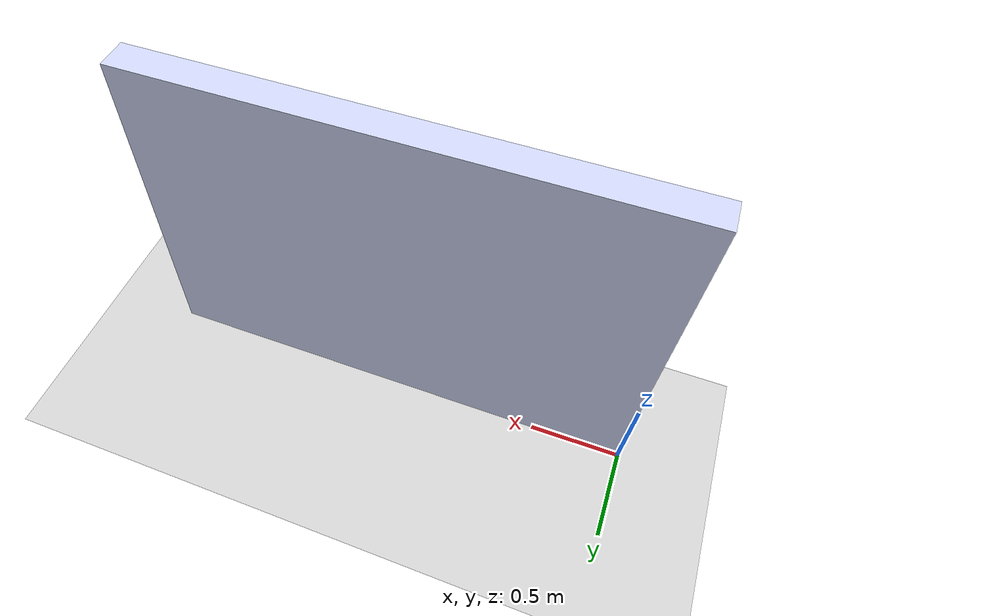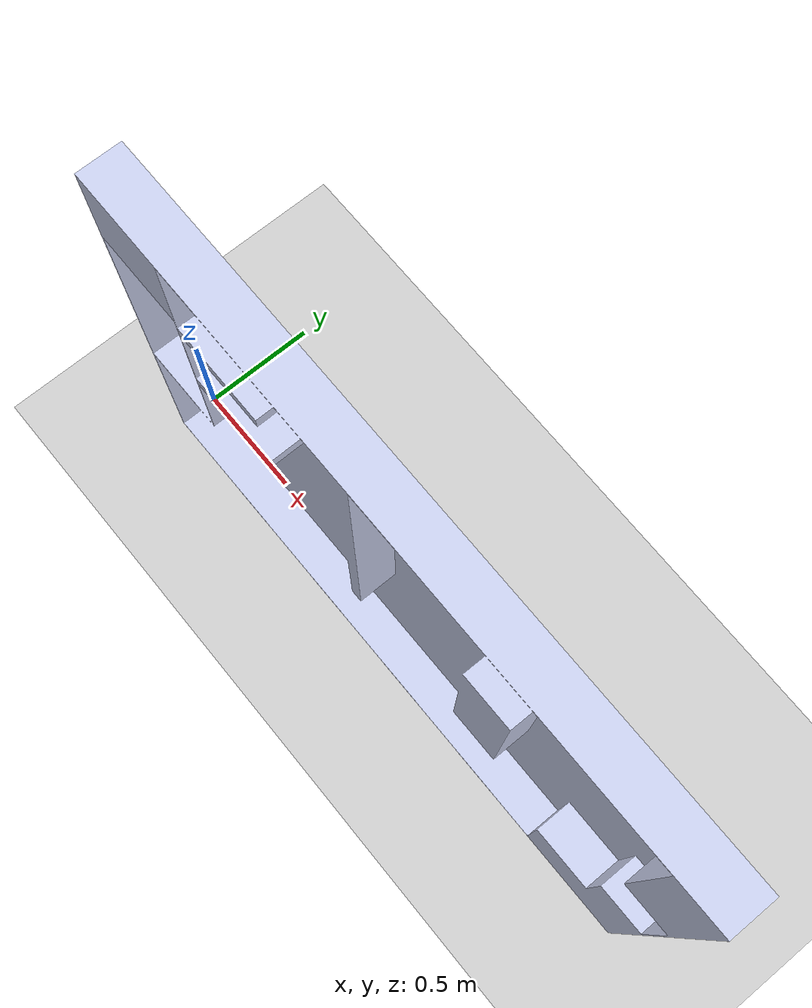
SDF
<?xml version="1.0" ?>
<sdf version="1.7">
  <world name="default">
    <!-- Lighting and background settings -->
    <include>
      <uri>https://fuel.gazebosim.org/1.0/OpenRobotics/models/Sun</uri>
    </include>
    <include>
      <uri>https://fuel.gazebosim.org/1.0/OpenRobotics/models/Ground Plane</uri>
    </include>

    <!-- Walls model -->
    <include>
      <uri>models://deli_world/walls</uri>
      <pose>0 0 0 0 0 0</pose>
    </include>
    <!-- Product model -->
  </world>
</sdf>

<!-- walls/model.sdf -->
<sdf version='1.7'>
  <model name="walls">
    <pose>1.6917 1.0127 0.06587 0 0 0</pose>
    <static>true</static>
    <link name="walls">
      <inertial>
        <pose>1.6917 1.0127 0.06587 0 0 0</pose>
        <mass>185.39</mass>
        <inertia>
          <ixx>65.339</ixx>
          <ixy>36.726</ixy>
          <ixz>-1.3721</ixz>
          <iyy>160.95</iyy>
          <iyz>-0.28055</iyz>
          <izz>225.18</izz>
        </inertia>
      </inertial>
      <collision name="walls_collision">
        <pose>0 0 0 0 0 0</pose>
        <geometry>
          <mesh>
            <uri>models://deli_world/walls/meshes/walls.dae</uri>
          </mesh>
        </geometry>
      </collision>
      <visual name="walls_visual">
        <pose>0 0 0 0 0 0</pose>
        <geometry>
          <mesh>
            <uri>models://deli_world/walls/meshes/walls.dae</uri>
          </mesh>
        </geometry>
        <material>
          <ambient>0.79216 0.81961 0.93333 1</ambient>
          <diffuse>0.79216 0.81961 0.93333 1</diffuse>
          <specular>0 0 0 1</specular>
        </material>
      </visual>
    </link>
  </model>
</sdf>
